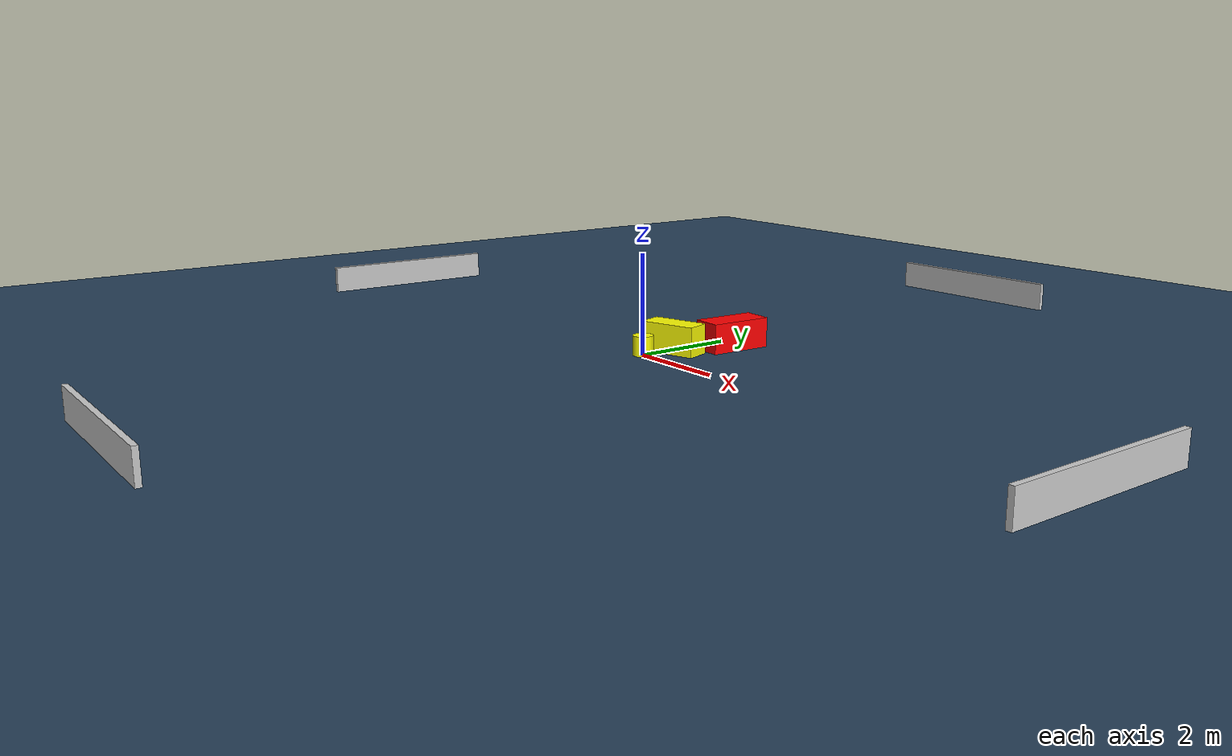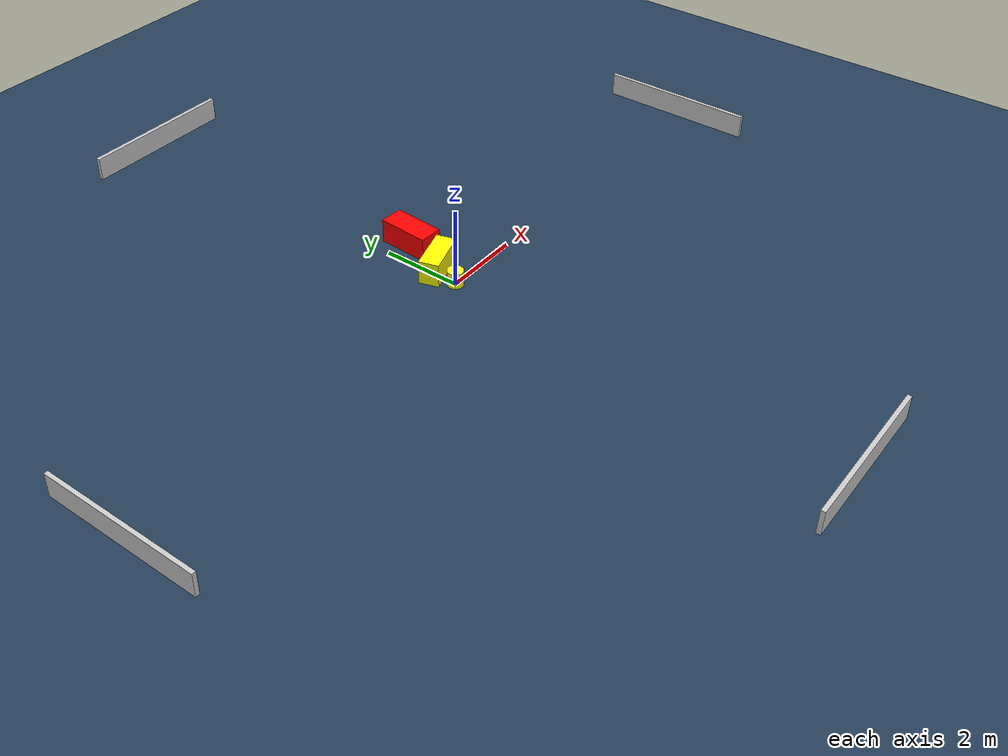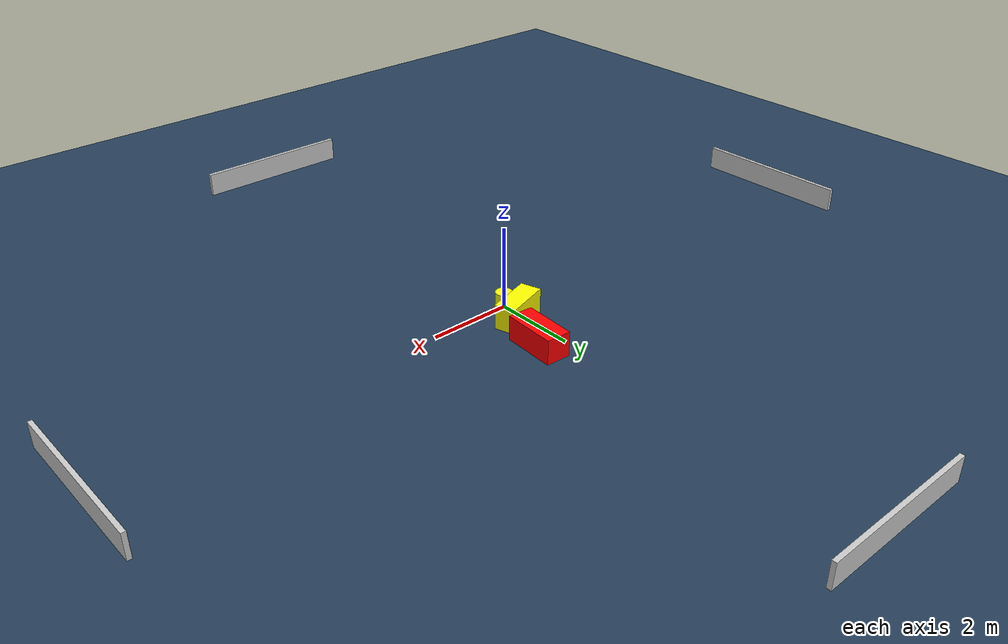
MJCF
<?xml version="1.0" ?>
<mujoco model="generated_environment">
  <option timestep="0.01" integrator="RK4" cone="elliptic"/>
  <default>
    <geom density="1"/>
  </default>
  <asset>
    <texture builtin="gradient" height="3072" name="skybox" rgb1="0.3 0.5 0.7" rgb2="0 0 0" type="skybox" width="512"/>
    <texture builtin="checker" height="300" name="groundplane" rgb1="0.2 0.3 0.4" rgb2="0.1 0.2 0.3" type="2d" width="300"/>
    <material name="groundplane" reflectance="0.2" texrepeat="5 5" texture="groundplane"/>
  </asset>
  <worldbody>
    <light dir="0 0 -1" directional="true" pos="0 0 1.5"/>
    <geom condim="3" friction="0.5 0.005 0.001" material="groundplane" name="floor" pos="0 0 0" size="0 0 0.05" type="plane"/>
    <body name="walls">
      <geom name="wall_1" condim="4" pos="-10.0 0.0 0.3" rgba="0.800000011920929 0.800000011920929 0.800000011920929 1.0" size="0.05 2.0 0.3" type="box"/>
      <geom name="wall_2" condim="4" pos="10.0 0.0 0.3" rgba="0.800000011920929 0.800000011920929 0.800000011920929 1.0" size="0.05 2.0 0.3" type="box"/>
      <geom name="wall_3" condim="4" pos="0.0 -10.0 0.3" rgba="0.800000011920929 0.800000011920929 0.800000011920929 1.0" size="2.0 0.05 0.3" type="box"/>
      <geom name="wall_4" condim="4" pos="0.0 10.0 0.3" rgba="0.800000011920929 0.800000011920929 0.800000011920929 1.0" size="2.0 0.05 0.3" type="box"/>
    </body>
    <body name="robot">
      <joint name="joint_x" type="slide" pos="0 0 0" axis="1 0 0"/>
      <joint name="joint_y" type="slide" pos="0 0 0" axis="0 1 0"/>
      <geom name="robot" type="cylinder" pos="0.0 0.0 0.2" size="0.2 0.2 0.0" mass="5.0" friction="1.0 0.005 0.0001" condim="4" rgba="1.0 1.0 0.0 1.0"/>
    </body>
    <body name="obstacle_1_movable">
      <geom name="obstacle_1_movable" condim="4" pos="0.15263671351868058 0.6394055470944924 0.3" euler="0 0 16.995758599722507" friction="0.0 0.005 0.001" rgba="1.0 1.0 0.0 1.0" size="0.577479306243537 0.24976968357518672 0.3" type="box" mass="0.1"/>
      <joint type="free"/>
    </body>
    <body name="obstacle_2_static">
      <geom name="obstacle_2_static" condim="4" pos="0.5837021184672121 1.7876921433902224 0.3" euler="0 0 86.64410659243312" friction="0.0 0.005 0.001" rgba="1.0 0.0 0.0 1.0" size="0.6444969964991251 0.2984384125318643 0.3" type="box"/>
    </body>
  </worldbody>
  <actuator>
    <motor name="actuator_x" joint="joint_x" gear="1" ctrlrange="-1 1"/>
    <motor name="actuator_y" joint="joint_y" gear="1" ctrlrange="-1 1"/>
  </actuator>
</mujoco>
